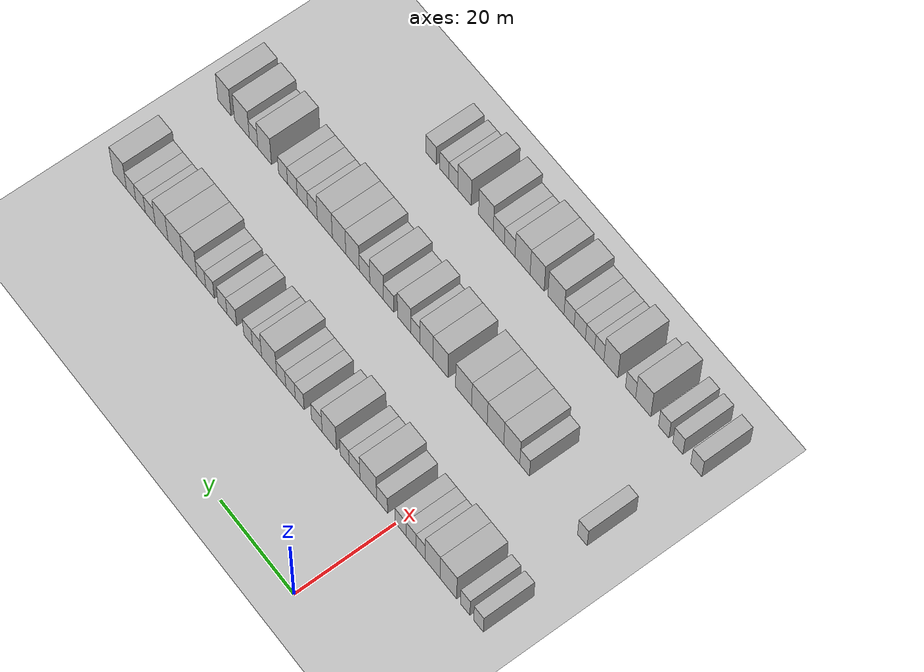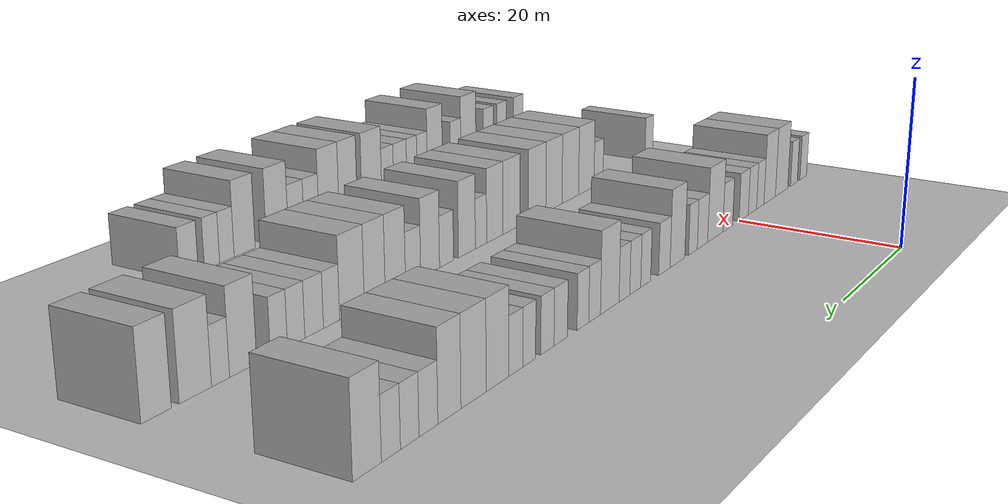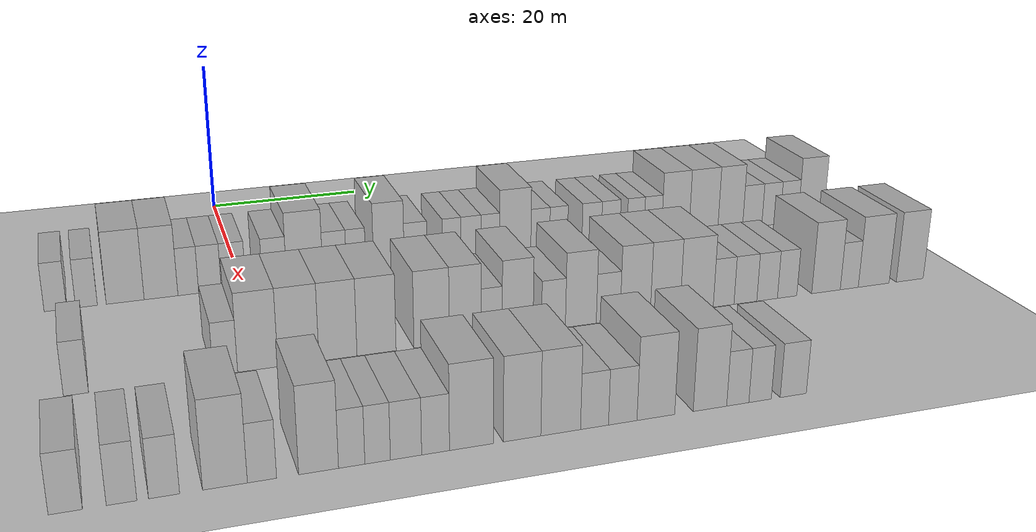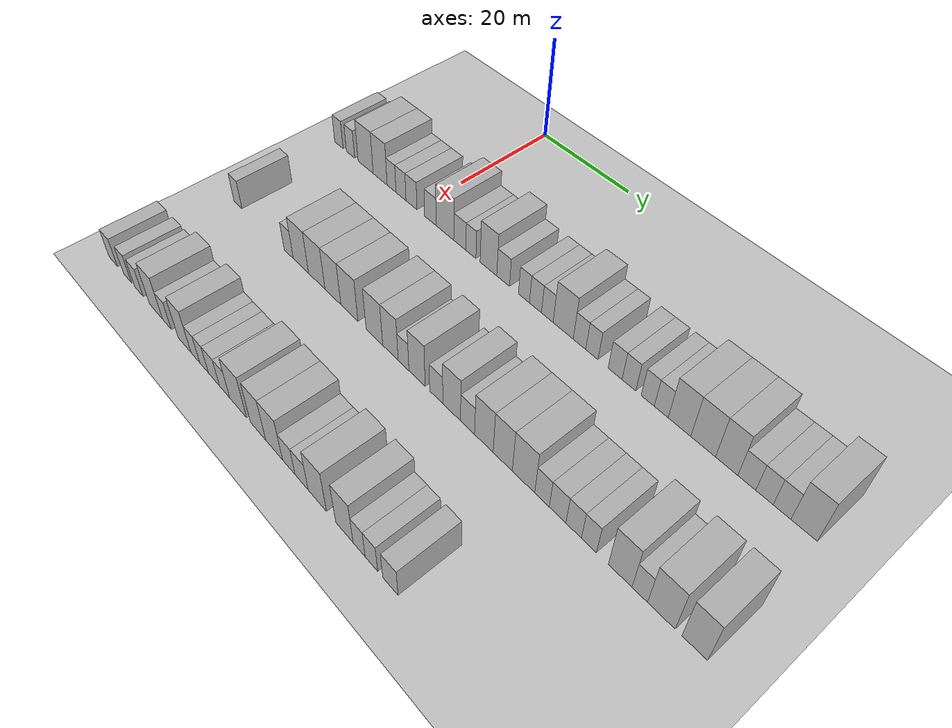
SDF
<sdf version="1.6">
 <world name="default">
  <include><name>ground_plane_1</name><uri>model://HANNAS_ground_plane</uri></include>
  <model name="building_95">
   <static>1</static>
   <pose>25.0000 -21.7212 0 0.000000 0.000000 0.000000</pose>
   <link name="link">
    <pose>0 0 3.00 0 0 0</pose>
    <collision name="collision"><geometry><box><size>10.0000 2.5044 6.0000</size></box></geometry></collision>
    <visual name="visual">
     <cast_shadows>0</cast_shadows>
     <geometry><box><size>10.0000 2.5044 6.0000</size></box></geometry>
     <material>
      <script>
       <uri>model://HANNAS_wall/materials/scripts</uri>
       <uri>model://HANNAS_wall/materials/textures</uri>
       <name>vrc/HANNAS_wall</name>
      </script>
     </material>
    </visual>
   </link>
  </model>
  <model name="building_96">
   <static>1</static>
   <pose>25.0000 -18.2491 0 0.000000 0.000000 0.000000</pose>
   <link name="link">
    <pose>0 0 3.00 0 0 0</pose>
    <collision name="collision"><geometry><box><size>10.0000 2.4398 6.0000</size></box></geometry></collision>
    <visual name="visual">
     <cast_shadows>0</cast_shadows>
     <geometry><box><size>10.0000 2.4398 6.0000</size></box></geometry>
     <material>
      <script>
       <uri>model://HANNAS_wall/materials/scripts</uri>
       <uri>model://HANNAS_wall/materials/textures</uri>
       <name>vrc/HANNAS_wall</name>
      </script>
     </material>
    </visual>
   </link>
  </model>
  <model name="building_97">
   <static>1</static>
   <pose>25.0000 -13.8634 0 0.000000 0.000000 0.000000</pose>
   <link name="link">
    <pose>0 0 4.50 0 0 0</pose>
    <collision name="collision"><geometry><box><size>10.0000 4.3315 9.0000</size></box></geometry></collision>
    <visual name="visual">
     <cast_shadows>0</cast_shadows>
     <geometry><box><size>10.0000 4.3315 9.0000</size></box></geometry>
     <material>
      <script>
       <uri>model://HANNAS_wall/materials/scripts</uri>
       <uri>model://HANNAS_wall/materials/textures</uri>
       <name>vrc/HANNAS_wall</name>
      </script>
     </material>
    </visual>
   </link>
  </model>
  <model name="building_98">
   <static>1</static>
   <pose>25.0000 -9.7449 0 0.000000 0.000000 0.000000</pose>
   <link name="link">
    <pose>0 0 4.50 0 0 0</pose>
    <collision name="collision"><geometry><box><size>10.0000 3.9057 9.0000</size></box></geometry></collision>
    <visual name="visual">
     <cast_shadows>0</cast_shadows>
     <geometry><box><size>10.0000 3.9057 9.0000</size></box></geometry>
     <material>
      <script>
       <uri>model://HANNAS_wall/materials/scripts</uri>
       <uri>model://HANNAS_wall/materials/textures</uri>
       <name>vrc/HANNAS_wall</name>
      </script>
     </material>
    </visual>
   </link>
  </model>
  <model name="building_99">
   <static>1</static>
   <pose>25.0000 -6.5757 0 0.000000 0.000000 0.000000</pose>
   <link name="link">
    <pose>0 0 3.00 0 0 0</pose>
    <collision name="collision"><geometry><box><size>10.0000 2.4326 6.0000</size></box></geometry></collision>
    <visual name="visual">
     <cast_shadows>0</cast_shadows>
     <geometry><box><size>10.0000 2.4326 6.0000</size></box></geometry>
     <material>
      <script>
       <uri>model://HANNAS_wall/materials/scripts</uri>
       <uri>model://HANNAS_wall/materials/textures</uri>
       <name>vrc/HANNAS_wall</name>
      </script>
     </material>
    </visual>
   </link>
  </model>
  <model name="building_100">
   <static>1</static>
   <pose>25.0000 -4.0200 0 0.000000 0.000000 0.000000</pose>
   <link name="link">
    <pose>0 0 3.00 0 0 0</pose>
    <collision name="collision"><geometry><box><size>10.0000 2.6788 6.0000</size></box></geometry></collision>
    <visual name="visual">
     <cast_shadows>0</cast_shadows>
     <geometry><box><size>10.0000 2.6788 6.0000</size></box></geometry>
     <material>
      <script>
       <uri>model://HANNAS_wall/materials/scripts</uri>
       <uri>model://HANNAS_wall/materials/textures</uri>
       <name>vrc/HANNAS_wall</name>
      </script>
     </material>
    </visual>
   </link>
  </model>
  <model name="building_101">
   <static>1</static>
   <pose>25.0000 -1.2265 0 0.000000 0.000000 0.000000</pose>
   <link name="link">
    <pose>0 0 3.00 0 0 0</pose>
    <collision name="collision"><geometry><box><size>10.0000 2.9083 6.0000</size></box></geometry></collision>
    <visual name="visual">
     <cast_shadows>0</cast_shadows>
     <geometry><box><size>10.0000 2.9083 6.0000</size></box></geometry>
     <material>
      <script>
       <uri>model://HANNAS_wall/materials/scripts</uri>
       <uri>model://HANNAS_wall/materials/textures</uri>
       <name>vrc/HANNAS_wall</name>
      </script>
     </material>
    </visual>
   </link>
  </model>
  <model name="building_102">
   <static>1</static>
   <pose>25.0000 3.6994 0 0.000000 0.000000 0.000000</pose>
   <link name="link">
    <pose>0 0 3.00 0 0 0</pose>
    <collision name="collision"><geometry><box><size>10.0000 2.9434 6.0000</size></box></geometry></collision>
    <visual name="visual">
     <cast_shadows>0</cast_shadows>
     <geometry><box><size>10.0000 2.9434 6.0000</size></box></geometry>
     <material>
      <script>
       <uri>model://HANNAS_wall/materials/scripts</uri>
       <uri>model://HANNAS_wall/materials/textures</uri>
       <name>vrc/HANNAS_wall</name>
      </script>
     </material>
    </visual>
   </link>
  </model>
  <model name="building_103">
   <static>1</static>
   <pose>25.0000 7.3954 0 0.000000 0.000000 0.000000</pose>
   <link name="link">
    <pose>0 0 4.50 0 0 0</pose>
    <collision name="collision"><geometry><box><size>10.0000 4.4487 9.0000</size></box></geometry></collision>
    <visual name="visual">
     <cast_shadows>0</cast_shadows>
     <geometry><box><size>10.0000 4.4487 9.0000</size></box></geometry>
     <material>
      <script>
       <uri>model://HANNAS_wall/materials/scripts</uri>
       <uri>model://HANNAS_wall/materials/textures</uri>
       <name>vrc/HANNAS_wall</name>
      </script>
     </material>
    </visual>
   </link>
  </model>
  <model name="building_104">
   <static>1</static>
   <pose>25.0000 11.0896 0 0.000000 0.000000 0.000000</pose>
   <link name="link">
    <pose>0 0 3.00 0 0 0</pose>
    <collision name="collision"><geometry><box><size>10.0000 2.9396 6.0000</size></box></geometry></collision>
    <visual name="visual">
     <cast_shadows>0</cast_shadows>
     <geometry><box><size>10.0000 2.9396 6.0000</size></box></geometry>
     <material>
      <script>
       <uri>model://HANNAS_wall/materials/scripts</uri>
       <uri>model://HANNAS_wall/materials/textures</uri>
       <name>vrc/HANNAS_wall</name>
      </script>
     </material>
    </visual>
   </link>
  </model>
  <model name="building_105">
   <static>1</static>
   <pose>25.0000 13.7707 0 0.000000 0.000000 0.000000</pose>
   <link name="link">
    <pose>0 0 3.00 0 0 0</pose>
    <collision name="collision"><geometry><box><size>10.0000 2.4226 6.0000</size></box></geometry></collision>
    <visual name="visual">
     <cast_shadows>0</cast_shadows>
     <geometry><box><size>10.0000 2.4226 6.0000</size></box></geometry>
     <material>
      <script>
       <uri>model://HANNAS_wall/materials/scripts</uri>
       <uri>model://HANNAS_wall/materials/textures</uri>
       <name>vrc/HANNAS_wall</name>
      </script>
     </material>
    </visual>
   </link>
  </model>
  <model name="building_106">
   <static>1</static>
   <pose>25.0000 17.9264 0 0.000000 0.000000 0.000000</pose>
   <link name="link">
    <pose>0 0 4.50 0 0 0</pose>
    <collision name="collision"><geometry><box><size>10.0000 3.8888 9.0000</size></box></geometry></collision>
    <visual name="visual">
     <cast_shadows>0</cast_shadows>
     <geometry><box><size>10.0000 3.8888 9.0000</size></box></geometry>
     <material>
      <script>
       <uri>model://HANNAS_wall/materials/scripts</uri>
       <uri>model://HANNAS_wall/materials/textures</uri>
       <name>vrc/HANNAS_wall</name>
      </script>
     </material>
    </visual>
   </link>
  </model>
  <model name="building_107">
   <static>1</static>
   <pose>25.0000 21.3373 0 0.000000 0.000000 0.000000</pose>
   <link name="link">
    <pose>0 0 3.00 0 0 0</pose>
    <collision name="collision"><geometry><box><size>10.0000 2.9331 6.0000</size></box></geometry></collision>
    <visual name="visual">
     <cast_shadows>0</cast_shadows>
     <geometry><box><size>10.0000 2.9331 6.0000</size></box></geometry>
     <material>
      <script>
       <uri>model://HANNAS_wall/materials/scripts</uri>
       <uri>model://HANNAS_wall/materials/textures</uri>
       <name>vrc/HANNAS_wall</name>
      </script>
     </material>
    </visual>
   </link>
  </model>
  <model name="building_108">
   <static>1</static>
   <pose>25.0000 26.0196 0 0.000000 0.000000 0.000000</pose>
   <link name="link">
    <pose>0 0 3.00 0 0 0</pose>
    <collision name="collision"><geometry><box><size>10.0000 2.4313 6.0000</size></box></geometry></collision>
    <visual name="visual">
     <cast_shadows>0</cast_shadows>
     <geometry><box><size>10.0000 2.4313 6.0000</size></box></geometry>
     <material>
      <script>
       <uri>model://HANNAS_wall/materials/scripts</uri>
       <uri>model://HANNAS_wall/materials/textures</uri>
       <name>vrc/HANNAS_wall</name>
      </script>
     </material>
    </visual>
   </link>
  </model>
  <model name="building_109">
   <static>1</static>
   <pose>25.0000 28.5435 0 0.000000 0.000000 0.000000</pose>
   <link name="link">
    <pose>0 0 3.00 0 0 0</pose>
    <collision name="collision"><geometry><box><size>10.0000 2.6166 6.0000</size></box></geometry></collision>
    <visual name="visual">
     <cast_shadows>0</cast_shadows>
     <geometry><box><size>10.0000 2.6166 6.0000</size></box></geometry>
     <material>
      <script>
       <uri>model://HANNAS_wall/materials/scripts</uri>
       <uri>model://HANNAS_wall/materials/textures</uri>
       <name>vrc/HANNAS_wall</name>
      </script>
     </material>
    </visual>
   </link>
  </model>
  <model name="building_110">
   <static>1</static>
   <pose>25.0000 31.0920 0 0.000000 0.000000 0.000000</pose>
   <link name="link">
    <pose>0 0 3.00 0 0 0</pose>
    <collision name="collision"><geometry><box><size>10.0000 2.4805 6.0000</size></box></geometry></collision>
    <visual name="visual">
     <cast_shadows>0</cast_shadows>
     <geometry><box><size>10.0000 2.4805 6.0000</size></box></geometry>
     <material>
      <script>
       <uri>model://HANNAS_wall/materials/scripts</uri>
       <uri>model://HANNAS_wall/materials/textures</uri>
       <name>vrc/HANNAS_wall</name>
      </script>
     </material>
    </visual>
   </link>
  </model>
  <model name="building_111">
   <static>1</static>
   <pose>25.0000 34.4292 0 0.000000 0.000000 0.000000</pose>
   <link name="link">
    <pose>0 0 4.50 0 0 0</pose>
    <collision name="collision"><geometry><box><size>10.0000 4.1938 9.0000</size></box></geometry></collision>
    <visual name="visual">
     <cast_shadows>0</cast_shadows>
     <geometry><box><size>10.0000 4.1938 9.0000</size></box></geometry>
     <material>
      <script>
       <uri>model://HANNAS_wall/materials/scripts</uri>
       <uri>model://HANNAS_wall/materials/textures</uri>
       <name>vrc/HANNAS_wall</name>
      </script>
     </material>
    </visual>
   </link>
  </model>
  <model name="building_112">
   <static>1</static>
   <pose>25.0000 37.8019 0 0.000000 0.000000 0.000000</pose>
   <link name="link">
    <pose>0 0 3.00 0 0 0</pose>
    <collision name="collision"><geometry><box><size>10.0000 2.5516 6.0000</size></box></geometry></collision>
    <visual name="visual">
     <cast_shadows>0</cast_shadows>
     <geometry><box><size>10.0000 2.5516 6.0000</size></box></geometry>
     <material>
      <script>
       <uri>model://HANNAS_wall/materials/scripts</uri>
       <uri>model://HANNAS_wall/materials/textures</uri>
       <name>vrc/HANNAS_wall</name>
      </script>
     </material>
    </visual>
   </link>
  </model>
  <model name="building_113">
   <static>1</static>
   <pose>25.0000 40.2975 0 0.000000 0.000000 0.000000</pose>
   <link name="link">
    <pose>0 0 3.00 0 0 0</pose>
    <collision name="collision"><geometry><box><size>10.0000 2.4397 6.0000</size></box></geometry></collision>
    <visual name="visual">
     <cast_shadows>0</cast_shadows>
     <geometry><box><size>10.0000 2.4397 6.0000</size></box></geometry>
     <material>
      <script>
       <uri>model://HANNAS_wall/materials/scripts</uri>
       <uri>model://HANNAS_wall/materials/textures</uri>
       <name>vrc/HANNAS_wall</name>
      </script>
     </material>
    </visual>
   </link>
  </model>
  <model name="building_114">
   <static>1</static>
   <pose>25.0000 44.8608 0 0.000000 0.000000 0.000000</pose>
   <link name="link">
    <pose>0 0 3.00 0 0 0</pose>
    <collision name="collision"><geometry><box><size>10.0000 2.6869 6.0000</size></box></geometry></collision>
    <visual name="visual">
     <cast_shadows>0</cast_shadows>
     <geometry><box><size>10.0000 2.6869 6.0000</size></box></geometry>
     <material>
      <script>
       <uri>model://HANNAS_wall/materials/scripts</uri>
       <uri>model://HANNAS_wall/materials/textures</uri>
       <name>vrc/HANNAS_wall</name>
      </script>
     </material>
    </visual>
   </link>
  </model>
  <model name="building_115">
   <static>1</static>
   <pose>25.0000 47.4976 0 0.000000 0.000000 0.000000</pose>
   <link name="link">
    <pose>0 0 3.00 0 0 0</pose>
    <collision name="collision"><geometry><box><size>10.0000 2.5867 6.0000</size></box></geometry></collision>
    <visual name="visual">
     <cast_shadows>0</cast_shadows>
     <geometry><box><size>10.0000 2.5867 6.0000</size></box></geometry>
     <material>
      <script>
       <uri>model://HANNAS_wall/materials/scripts</uri>
       <uri>model://HANNAS_wall/materials/textures</uri>
       <name>vrc/HANNAS_wall</name>
      </script>
     </material>
    </visual>
   </link>
  </model>
  <model name="building_116">
   <static>1</static>
   <pose>25.0000 51.0020 0 0.000000 0.000000 0.000000</pose>
   <link name="link">
    <pose>0 0 3.00 0 0 0</pose>
    <collision name="collision"><geometry><box><size>10.0000 2.4221 6.0000</size></box></geometry></collision>
    <visual name="visual">
     <cast_shadows>0</cast_shadows>
     <geometry><box><size>10.0000 2.4221 6.0000</size></box></geometry>
     <material>
      <script>
       <uri>model://HANNAS_wall/materials/scripts</uri>
       <uri>model://HANNAS_wall/materials/textures</uri>
       <name>vrc/HANNAS_wall</name>
      </script>
     </material>
    </visual>
   </link>
  </model>
  <model name="building_117">
   <static>1</static>
   <pose>25.0000 53.4731 0 0.000000 0.000000 0.000000</pose>
   <link name="link">
    <pose>0 0 3.00 0 0 0</pose>
    <collision name="collision"><geometry><box><size>10.0000 2.5202 6.0000</size></box></geometry></collision>
    <visual name="visual">
     <cast_shadows>0</cast_shadows>
     <geometry><box><size>10.0000 2.5202 6.0000</size></box></geometry>
     <material>
      <script>
       <uri>model://HANNAS_wall/materials/scripts</uri>
       <uri>model://HANNAS_wall/materials/textures</uri>
       <name>vrc/HANNAS_wall</name>
      </script>
     </material>
    </visual>
   </link>
  </model>
  <model name="building_118">
   <static>1</static>
   <pose>25.0000 56.7251 0 0.000000 0.000000 0.000000</pose>
   <link name="link">
    <pose>0 0 4.50 0 0 0</pose>
    <collision name="collision"><geometry><box><size>10.0000 3.9838 9.0000</size></box></geometry></collision>
    <visual name="visual">
     <cast_shadows>0</cast_shadows>
     <geometry><box><size>10.0000 3.9838 9.0000</size></box></geometry>
     <material>
      <script>
       <uri>model://HANNAS_wall/materials/scripts</uri>
       <uri>model://HANNAS_wall/materials/textures</uri>
       <name>vrc/HANNAS_wall</name>
      </script>
     </material>
    </visual>
   </link>
  </model>
  <model name="building_119">
   <static>1</static>
   <pose>25.0000 60.8291 0 0.000000 0.000000 0.000000</pose>
   <link name="link">
    <pose>0 0 4.50 0 0 0</pose>
    <collision name="collision"><geometry><box><size>10.0000 4.2242 9.0000</size></box></geometry></collision>
    <visual name="visual">
     <cast_shadows>0</cast_shadows>
     <geometry><box><size>10.0000 4.2242 9.0000</size></box></geometry>
     <material>
      <script>
       <uri>model://HANNAS_wall/materials/scripts</uri>
       <uri>model://HANNAS_wall/materials/textures</uri>
       <name>vrc/HANNAS_wall</name>
      </script>
     </material>
    </visual>
   </link>
  </model>
  <model name="building_120">
   <static>1</static>
   <pose>25.0000 64.7787 0 0.000000 0.000000 0.000000</pose>
   <link name="link">
    <pose>0 0 4.50 0 0 0</pose>
    <collision name="collision"><geometry><box><size>10.0000 3.6748 9.0000</size></box></geometry></collision>
    <visual name="visual">
     <cast_shadows>0</cast_shadows>
     <geometry><box><size>10.0000 3.6748 9.0000</size></box></geometry>
     <material>
      <script>
       <uri>model://HANNAS_wall/materials/scripts</uri>
       <uri>model://HANNAS_wall/materials/textures</uri>
       <name>vrc/HANNAS_wall</name>
      </script>
     </material>
    </visual>
   </link>
  </model>
  <model name="building_121">
   <static>1</static>
   <pose>25.0000 68.0597 0 0.000000 0.000000 0.000000</pose>
   <link name="link">
    <pose>0 0 3.00 0 0 0</pose>
    <collision name="collision"><geometry><box><size>10.0000 2.8872 6.0000</size></box></geometry></collision>
    <visual name="visual">
     <cast_shadows>0</cast_shadows>
     <geometry><box><size>10.0000 2.8872 6.0000</size></box></geometry>
     <material>
      <script>
       <uri>model://HANNAS_wall/materials/scripts</uri>
       <uri>model://HANNAS_wall/materials/textures</uri>
       <name>vrc/HANNAS_wall</name>
      </script>
     </material>
    </visual>
   </link>
  </model>
  <model name="building_122">
   <static>1</static>
   <pose>25.0000 70.8754 0 0.000000 0.000000 0.000000</pose>
   <link name="link">
    <pose>0 0 3.00 0 0 0</pose>
    <collision name="collision"><geometry><box><size>10.0000 2.7441 6.0000</size></box></geometry></collision>
    <visual name="visual">
     <cast_shadows>0</cast_shadows>
     <geometry><box><size>10.0000 2.7441 6.0000</size></box></geometry>
     <material>
      <script>
       <uri>model://HANNAS_wall/materials/scripts</uri>
       <uri>model://HANNAS_wall/materials/textures</uri>
       <name>vrc/HANNAS_wall</name>
      </script>
     </material>
    </visual>
   </link>
  </model>
  <model name="building_123">
   <static>1</static>
   <pose>25.0000 73.6051 0 0.000000 0.000000 0.000000</pose>
   <link name="link">
    <pose>0 0 3.00 0 0 0</pose>
    <collision name="collision"><geometry><box><size>10.0000 2.7154 6.0000</size></box></geometry></collision>
    <visual name="visual">
     <cast_shadows>0</cast_shadows>
     <geometry><box><size>10.0000 2.7154 6.0000</size></box></geometry>
     <material>
      <script>
       <uri>model://HANNAS_wall/materials/scripts</uri>
       <uri>model://HANNAS_wall/materials/textures</uri>
       <name>vrc/HANNAS_wall</name>
      </script>
     </material>
    </visual>
   </link>
  </model>
  <model name="building_124">
   <static>1</static>
   <pose>25.0000 76.9421 0 0.000000 0.000000 0.000000</pose>
   <link name="link">
    <pose>0 0 4.50 0 0 0</pose>
    <collision name="collision"><geometry><box><size>10.0000 3.9586 9.0000</size></box></geometry></collision>
    <visual name="visual">
     <cast_shadows>0</cast_shadows>
     <geometry><box><size>10.0000 3.9586 9.0000</size></box></geometry>
     <material>
      <script>
       <uri>model://HANNAS_wall/materials/scripts</uri>
       <uri>model://HANNAS_wall/materials/textures</uri>
       <name>vrc/HANNAS_wall</name>
      </script>
     </material>
    </visual>
   </link>
  </model>
  <model name="building_289">
   <static>1</static>
   <pose>47.0000 -20.0310 0 0.000000 0.000000 0.000000</pose>
   <link name="link">
    <pose>0 0 3.00 0 0 0</pose>
    <collision name="collision"><geometry><box><size>10.0000 2.4629 6.0000</size></box></geometry></collision>
    <visual name="visual">
     <cast_shadows>0</cast_shadows>
     <geometry><box><size>10.0000 2.4629 6.0000</size></box></geometry>
     <material>
      <script>
       <uri>model://HANNAS_wall/materials/scripts</uri>
       <uri>model://HANNAS_wall/materials/textures</uri>
       <name>vrc/HANNAS_wall</name>
      </script>
     </material>
    </visual>
   </link>
  </model>
  <model name="building_290">
   <static>1</static>
   <pose>47.0000 -4.9883 0 0.000000 0.000000 0.000000</pose>
   <link name="link">
    <pose>0 0 3.00 0 0 0</pose>
    <collision name="collision"><geometry><box><size>10.0000 2.5408 6.0000</size></box></geometry></collision>
    <visual name="visual">
     <cast_shadows>0</cast_shadows>
     <geometry><box><size>10.0000 2.5408 6.0000</size></box></geometry>
     <material>
      <script>
       <uri>model://HANNAS_wall/materials/scripts</uri>
       <uri>model://HANNAS_wall/materials/textures</uri>
       <name>vrc/HANNAS_wall</name>
      </script>
     </material>
    </visual>
   </link>
  </model>
  <model name="building_291">
   <static>1</static>
   <pose>47.0000 -1.5984 0 0.000000 0.000000 0.000000</pose>
   <link name="link">
    <pose>0 0 4.50 0 0 0</pose>
    <collision name="collision"><geometry><box><size>10.0000 4.2390 9.0000</size></box></geometry></collision>
    <visual name="visual">
     <cast_shadows>0</cast_shadows>
     <geometry><box><size>10.0000 4.2390 9.0000</size></box></geometry>
     <material>
      <script>
       <uri>model://HANNAS_wall/materials/scripts</uri>
       <uri>model://HANNAS_wall/materials/textures</uri>
       <name>vrc/HANNAS_wall</name>
      </script>
     </material>
    </visual>
   </link>
  </model>
  <model name="building_292">
   <static>1</static>
   <pose>47.0000 2.7138 0 0.000000 0.000000 0.000000</pose>
   <link name="link">
    <pose>0 0 4.50 0 0 0</pose>
    <collision name="collision"><geometry><box><size>10.0000 4.3853 9.0000</size></box></geometry></collision>
    <visual name="visual">
     <cast_shadows>0</cast_shadows>
     <geometry><box><size>10.0000 4.3853 9.0000</size></box></geometry>
     <material>
      <script>
       <uri>model://HANNAS_wall/materials/scripts</uri>
       <uri>model://HANNAS_wall/materials/textures</uri>
       <name>vrc/HANNAS_wall</name>
      </script>
     </material>
    </visual>
   </link>
  </model>
  <model name="building_293">
   <static>1</static>
   <pose>47.0000 6.9749 0 0.000000 0.000000 0.000000</pose>
   <link name="link">
    <pose>0 0 4.50 0 0 0</pose>
    <collision name="collision"><geometry><box><size>10.0000 4.1368 9.0000</size></box></geometry></collision>
    <visual name="visual">
     <cast_shadows>0</cast_shadows>
     <geometry><box><size>10.0000 4.1368 9.0000</size></box></geometry>
     <material>
      <script>
       <uri>model://HANNAS_wall/materials/scripts</uri>
       <uri>model://HANNAS_wall/materials/textures</uri>
       <name>vrc/HANNAS_wall</name>
      </script>
     </material>
    </visual>
   </link>
  </model>
  <model name="building_294">
   <static>1</static>
   <pose>47.0000 11.2020 0 0.000000 0.000000 0.000000</pose>
   <link name="link">
    <pose>0 0 4.50 0 0 0</pose>
    <collision name="collision"><geometry><box><size>10.0000 4.3174 9.0000</size></box></geometry></collision>
    <visual name="visual">
     <cast_shadows>0</cast_shadows>
     <geometry><box><size>10.0000 4.3174 9.0000</size></box></geometry>
     <material>
      <script>
       <uri>model://HANNAS_wall/materials/scripts</uri>
       <uri>model://HANNAS_wall/materials/textures</uri>
       <name>vrc/HANNAS_wall</name>
      </script>
     </material>
    </visual>
   </link>
  </model>
  <model name="building_295">
   <static>1</static>
   <pose>47.0000 17.3605 0 0.000000 0.000000 0.000000</pose>
   <link name="link">
    <pose>0 0 4.50 0 0 0</pose>
    <collision name="collision"><geometry><box><size>10.0000 3.9996 9.0000</size></box></geometry></collision>
    <visual name="visual">
     <cast_shadows>0</cast_shadows>
     <geometry><box><size>10.0000 3.9996 9.0000</size></box></geometry>
     <material>
      <script>
       <uri>model://HANNAS_wall/materials/scripts</uri>
       <uri>model://HANNAS_wall/materials/textures</uri>
       <name>vrc/HANNAS_wall</name>
      </script>
     </material>
    </visual>
   </link>
  </model>
  <model name="building_296">
   <static>1</static>
   <pose>47.0000 21.1738 0 0.000000 0.000000 0.000000</pose>
   <link name="link">
    <pose>0 0 4.50 0 0 0</pose>
    <collision name="collision"><geometry><box><size>10.0000 3.6269 9.0000</size></box></geometry></collision>
    <visual name="visual">
     <cast_shadows>0</cast_shadows>
     <geometry><box><size>10.0000 3.6269 9.0000</size></box></geometry>
     <material>
      <script>
       <uri>model://HANNAS_wall/materials/scripts</uri>
       <uri>model://HANNAS_wall/materials/textures</uri>
       <name>vrc/HANNAS_wall</name>
      </script>
     </material>
    </visual>
   </link>
  </model>
  <model name="building_297">
   <static>1</static>
   <pose>47.0000 24.2230 0 0.000000 0.000000 0.000000</pose>
   <link name="link">
    <pose>0 0 3.00 0 0 0</pose>
    <collision name="collision"><geometry><box><size>10.0000 2.4716 6.0000</size></box></geometry></collision>
    <visual name="visual">
     <cast_shadows>0</cast_shadows>
     <geometry><box><size>10.0000 2.4716 6.0000</size></box></geometry>
     <material>
      <script>
       <uri>model://HANNAS_wall/materials/scripts</uri>
       <uri>model://HANNAS_wall/materials/textures</uri>
       <name>vrc/HANNAS_wall</name>
      </script>
     </material>
    </visual>
   </link>
  </model>
  <model name="building_298">
   <static>1</static>
   <pose>47.0000 27.2712 0 0.000000 0.000000 0.000000</pose>
   <link name="link">
    <pose>0 0 4.50 0 0 0</pose>
    <collision name="collision"><geometry><box><size>10.0000 3.6248 9.0000</size></box></geometry></collision>
    <visual name="visual">
     <cast_shadows>0</cast_shadows>
     <geometry><box><size>10.0000 3.6248 9.0000</size></box></geometry>
     <material>
      <script>
       <uri>model://HANNAS_wall/materials/scripts</uri>
       <uri>model://HANNAS_wall/materials/textures</uri>
       <name>vrc/HANNAS_wall</name>
      </script>
     </material>
    </visual>
   </link>
  </model>
  <model name="building_299">
   <static>1</static>
   <pose>47.0000 31.5098 0 0.000000 0.000000 0.000000</pose>
   <link name="link">
    <pose>0 0 3.00 0 0 0</pose>
    <collision name="collision"><geometry><box><size>10.0000 2.8523 6.0000</size></box></geometry></collision>
    <visual name="visual">
     <cast_shadows>0</cast_shadows>
     <geometry><box><size>10.0000 2.8523 6.0000</size></box></geometry>
     <material>
      <script>
       <uri>model://HANNAS_wall/materials/scripts</uri>
       <uri>model://HANNAS_wall/materials/textures</uri>
       <name>vrc/HANNAS_wall</name>
      </script>
     </material>
    </visual>
   </link>
  </model>
  <model name="building_300">
   <static>1</static>
   <pose>47.0000 34.8039 0 0.000000 0.000000 0.000000</pose>
   <link name="link">
    <pose>0 0 4.50 0 0 0</pose>
    <collision name="collision"><geometry><box><size>10.0000 3.7359 9.0000</size></box></geometry></collision>
    <visual name="visual">
     <cast_shadows>0</cast_shadows>
     <geometry><box><size>10.0000 3.7359 9.0000</size></box></geometry>
     <material>
      <script>
       <uri>model://HANNAS_wall/materials/scripts</uri>
       <uri>model://HANNAS_wall/materials/textures</uri>
       <name>vrc/HANNAS_wall</name>
      </script>
     </material>
    </visual>
   </link>
  </model>
  <model name="building_301">
   <static>1</static>
   <pose>47.0000 38.1253 0 0.000000 0.000000 0.000000</pose>
   <link name="link">
    <pose>0 0 3.00 0 0 0</pose>
    <collision name="collision"><geometry><box><size>10.0000 2.9069 6.0000</size></box></geometry></collision>
    <visual name="visual">
     <cast_shadows>0</cast_shadows>
     <geometry><box><size>10.0000 2.9069 6.0000</size></box></geometry>
     <material>
      <script>
       <uri>model://HANNAS_wall/materials/scripts</uri>
       <uri>model://HANNAS_wall/materials/textures</uri>
       <name>vrc/HANNAS_wall</name>
      </script>
     </material>
    </visual>
   </link>
  </model>
  <model name="building_302">
   <static>1</static>
   <pose>47.0000 41.4503 0 0.000000 0.000000 0.000000</pose>
   <link name="link">
    <pose>0 0 4.50 0 0 0</pose>
    <collision name="collision"><geometry><box><size>10.0000 3.7432 9.0000</size></box></geometry></collision>
    <visual name="visual">
     <cast_shadows>0</cast_shadows>
     <geometry><box><size>10.0000 3.7432 9.0000</size></box></geometry>
     <material>
      <script>
       <uri>model://HANNAS_wall/materials/scripts</uri>
       <uri>model://HANNAS_wall/materials/textures</uri>
       <name>vrc/HANNAS_wall</name>
      </script>
     </material>
    </visual>
   </link>
  </model>
  <model name="building_303">
   <static>1</static>
   <pose>47.0000 45.1914 0 0.000000 0.000000 0.000000</pose>
   <link name="link">
    <pose>0 0 4.50 0 0 0</pose>
    <collision name="collision"><geometry><box><size>10.0000 3.7389 9.0000</size></box></geometry></collision>
    <visual name="visual">
     <cast_shadows>0</cast_shadows>
     <geometry><box><size>10.0000 3.7389 9.0000</size></box></geometry>
     <material>
      <script>
       <uri>model://HANNAS_wall/materials/scripts</uri>
       <uri>model://HANNAS_wall/materials/textures</uri>
       <name>vrc/HANNAS_wall</name>
      </script>
     </material>
    </visual>
   </link>
  </model>
  <model name="building_304">
   <static>1</static>
   <pose>47.0000 49.1782 0 0.000000 0.000000 0.000000</pose>
   <link name="link">
    <pose>0 0 4.50 0 0 0</pose>
    <collision name="collision"><geometry><box><size>10.0000 4.2348 9.0000</size></box></geometry></collision>
    <visual name="visual">
     <cast_shadows>0</cast_shadows>
     <geometry><box><size>10.0000 4.2348 9.0000</size></box></geometry>
     <material>
      <script>
       <uri>model://HANNAS_wall/materials/scripts</uri>
       <uri>model://HANNAS_wall/materials/textures</uri>
       <name>vrc/HANNAS_wall</name>
      </script>
     </material>
    </visual>
   </link>
  </model>
  <model name="building_305">
   <static>1</static>
   <pose>47.0000 52.6329 0 0.000000 0.000000 0.000000</pose>
   <link name="link">
    <pose>0 0 3.00 0 0 0</pose>
    <collision name="collision"><geometry><box><size>10.0000 2.6744 6.0000</size></box></geometry></collision>
    <visual name="visual">
     <cast_shadows>0</cast_shadows>
     <geometry><box><size>10.0000 2.6744 6.0000</size></box></geometry>
     <material>
      <script>
       <uri>model://HANNAS_wall/materials/scripts</uri>
       <uri>model://HANNAS_wall/materials/textures</uri>
       <name>vrc/HANNAS_wall</name>
      </script>
     </material>
    </visual>
   </link>
  </model>
  <model name="building_306">
   <static>1</static>
   <pose>47.0000 55.4599 0 0.000000 0.000000 0.000000</pose>
   <link name="link">
    <pose>0 0 3.00 0 0 0</pose>
    <collision name="collision"><geometry><box><size>10.0000 2.9797 6.0000</size></box></geometry></collision>
    <visual name="visual">
     <cast_shadows>0</cast_shadows>
     <geometry><box><size>10.0000 2.9797 6.0000</size></box></geometry>
     <material>
      <script>
       <uri>model://HANNAS_wall/materials/scripts</uri>
       <uri>model://HANNAS_wall/materials/textures</uri>
       <name>vrc/HANNAS_wall</name>
      </script>
     </material>
    </visual>
   </link>
  </model>
  <model name="building_307">
   <static>1</static>
   <pose>47.0000 58.3049 0 0.000000 0.000000 0.000000</pose>
   <link name="link">
    <pose>0 0 3.00 0 0 0</pose>
    <collision name="collision"><geometry><box><size>10.0000 2.7103 6.0000</size></box></geometry></collision>
    <visual name="visual">
     <cast_shadows>0</cast_shadows>
     <geometry><box><size>10.0000 2.7103 6.0000</size></box></geometry>
     <material>
      <script>
       <uri>model://HANNAS_wall/materials/scripts</uri>
       <uri>model://HANNAS_wall/materials/textures</uri>
       <name>vrc/HANNAS_wall</name>
      </script>
     </material>
    </visual>
   </link>
  </model>
  <model name="building_308">
   <static>1</static>
   <pose>47.0000 60.9471 0 0.000000 0.000000 0.000000</pose>
   <link name="link">
    <pose>0 0 3.00 0 0 0</pose>
    <collision name="collision"><geometry><box><size>10.0000 2.5742 6.0000</size></box></geometry></collision>
    <visual name="visual">
     <cast_shadows>0</cast_shadows>
     <geometry><box><size>10.0000 2.5742 6.0000</size></box></geometry>
     <material>
      <script>
       <uri>model://HANNAS_wall/materials/scripts</uri>
       <uri>model://HANNAS_wall/materials/textures</uri>
       <name>vrc/HANNAS_wall</name>
      </script>
     </material>
    </visual>
   </link>
  </model>
  <model name="building_309">
   <static>1</static>
   <pose>47.0000 66.1662 0 0.000000 0.000000 0.000000</pose>
   <link name="link">
    <pose>0 0 4.50 0 0 0</pose>
    <collision name="collision"><geometry><box><size>10.0000 3.8640 9.0000</size></box></geometry></collision>
    <visual name="visual">
     <cast_shadows>0</cast_shadows>
     <geometry><box><size>10.0000 3.8640 9.0000</size></box></geometry>
     <material>
      <script>
       <uri>model://HANNAS_wall/materials/scripts</uri>
       <uri>model://HANNAS_wall/materials/textures</uri>
       <name>vrc/HANNAS_wall</name>
      </script>
     </material>
    </visual>
   </link>
  </model>
  <model name="building_310">
   <static>1</static>
   <pose>47.0000 69.3322 0 0.000000 0.000000 0.000000</pose>
   <link name="link">
    <pose>0 0 3.00 0 0 0</pose>
    <collision name="collision"><geometry><box><size>10.0000 2.4679 6.0000</size></box></geometry></collision>
    <visual name="visual">
     <cast_shadows>0</cast_shadows>
     <geometry><box><size>10.0000 2.4679 6.0000</size></box></geometry>
     <material>
      <script>
       <uri>model://HANNAS_wall/materials/scripts</uri>
       <uri>model://HANNAS_wall/materials/textures</uri>
       <name>vrc/HANNAS_wall</name>
      </script>
     </material>
    </visual>
   </link>
  </model>
  <model name="building_311">
   <static>1</static>
   <pose>47.0000 72.7006 0 0.000000 0.000000 0.000000</pose>
   <link name="link">
    <pose>0 0 4.50 0 0 0</pose>
    <collision name="collision"><geometry><box><size>10.0000 4.2688 9.0000</size></box></geometry></collision>
    <visual name="visual">
     <cast_shadows>0</cast_shadows>
     <geometry><box><size>10.0000 4.2688 9.0000</size></box></geometry>
     <material>
      <script>
       <uri>model://HANNAS_wall/materials/scripts</uri>
       <uri>model://HANNAS_wall/materials/textures</uri>
       <name>vrc/HANNAS_wall</name>
      </script>
     </material>
    </visual>
   </link>
  </model>
  <model name="building_312">
   <static>1</static>
   <pose>47.0000 77.7313 0 0.000000 0.000000 0.000000</pose>
   <link name="link">
    <pose>0 0 4.50 0 0 0</pose>
    <collision name="collision"><geometry><box><size>10.0000 3.7927 9.0000</size></box></geometry></collision>
    <visual name="visual">
     <cast_shadows>0</cast_shadows>
     <geometry><box><size>10.0000 3.7927 9.0000</size></box></geometry>
     <material>
      <script>
       <uri>model://HANNAS_wall/materials/scripts</uri>
       <uri>model://HANNAS_wall/materials/textures</uri>
       <name>vrc/HANNAS_wall</name>
      </script>
     </material>
    </visual>
   </link>
  </model>
  <model name="building_470">
   <static>1</static>
   <pose>69.0000 -21.5121 0 0.000000 0.000000 0.000000</pose>
   <link name="link">
    <pose>0 0 3.00 0 0 0</pose>
    <collision name="collision"><geometry><box><size>10.0000 2.8530 6.0000</size></box></geometry></collision>
    <visual name="visual">
     <cast_shadows>0</cast_shadows>
     <geometry><box><size>10.0000 2.8530 6.0000</size></box></geometry>
     <material>
      <script>
       <uri>model://HANNAS_wall/materials/scripts</uri>
       <uri>model://HANNAS_wall/materials/textures</uri>
       <name>vrc/HANNAS_wall</name>
      </script>
     </material>
    </visual>
   </link>
  </model>
  <model name="building_471">
   <static>1</static>
   <pose>69.0000 -16.7837 0 0.000000 0.000000 0.000000</pose>
   <link name="link">
    <pose>0 0 3.00 0 0 0</pose>
    <collision name="collision"><geometry><box><size>10.0000 2.6037 6.0000</size></box></geometry></collision>
    <visual name="visual">
     <cast_shadows>0</cast_shadows>
     <geometry><box><size>10.0000 2.6037 6.0000</size></box></geometry>
     <material>
      <script>
       <uri>model://HANNAS_wall/materials/scripts</uri>
       <uri>model://HANNAS_wall/materials/textures</uri>
       <name>vrc/HANNAS_wall</name>
      </script>
     </material>
    </visual>
   </link>
  </model>
  <model name="building_472">
   <static>1</static>
   <pose>69.0000 -13.1388 0 0.000000 0.000000 0.000000</pose>
   <link name="link">
    <pose>0 0 3.00 0 0 0</pose>
    <collision name="collision"><geometry><box><size>10.0000 2.6862 6.0000</size></box></geometry></collision>
    <visual name="visual">
     <cast_shadows>0</cast_shadows>
     <geometry><box><size>10.0000 2.6862 6.0000</size></box></geometry>
     <material>
      <script>
       <uri>model://HANNAS_wall/materials/scripts</uri>
       <uri>model://HANNAS_wall/materials/textures</uri>
       <name>vrc/HANNAS_wall</name>
      </script>
     </material>
    </visual>
   </link>
  </model>
  <model name="building_473">
   <static>1</static>
   <pose>69.0000 -7.8086 0 0.000000 0.000000 0.000000</pose>
   <link name="link">
    <pose>0 0 4.50 0 0 0</pose>
    <collision name="collision"><geometry><box><size>10.0000 3.9742 9.0000</size></box></geometry></collision>
    <visual name="visual">
     <cast_shadows>0</cast_shadows>
     <geometry><box><size>10.0000 3.9742 9.0000</size></box></geometry>
     <material>
      <script>
       <uri>model://HANNAS_wall/materials/scripts</uri>
       <uri>model://HANNAS_wall/materials/textures</uri>
       <name>vrc/HANNAS_wall</name>
      </script>
     </material>
    </visual>
   </link>
  </model>
  <model name="building_474">
   <static>1</static>
   <pose>69.0000 -4.5075 0 0.000000 0.000000 0.000000</pose>
   <link name="link">
    <pose>0 0 3.00 0 0 0</pose>
    <collision name="collision"><geometry><box><size>10.0000 2.6280 6.0000</size></box></geometry></collision>
    <visual name="visual">
     <cast_shadows>0</cast_shadows>
     <geometry><box><size>10.0000 2.6280 6.0000</size></box></geometry>
     <material>
      <script>
       <uri>model://HANNAS_wall/materials/scripts</uri>
       <uri>model://HANNAS_wall/materials/textures</uri>
       <name>vrc/HANNAS_wall</name>
      </script>
     </material>
    </visual>
   </link>
  </model>
  <model name="building_475">
   <static>1</static>
   <pose>69.0000 0.6458 0 0.000000 0.000000 0.000000</pose>
   <link name="link">
    <pose>0 0 4.50 0 0 0</pose>
    <collision name="collision"><geometry><box><size>10.0000 3.6787 9.0000</size></box></geometry></collision>
    <visual name="visual">
     <cast_shadows>0</cast_shadows>
     <geometry><box><size>10.0000 3.6787 9.0000</size></box></geometry>
     <material>
      <script>
       <uri>model://HANNAS_wall/materials/scripts</uri>
       <uri>model://HANNAS_wall/materials/textures</uri>
       <name>vrc/HANNAS_wall</name>
      </script>
     </material>
    </visual>
   </link>
  </model>
  <model name="building_476">
   <static>1</static>
   <pose>69.0000 3.7163 0 0.000000 0.000000 0.000000</pose>
   <link name="link">
    <pose>0 0 3.00 0 0 0</pose>
    <collision name="collision"><geometry><box><size>10.0000 2.4623 6.0000</size></box></geometry></collision>
    <visual name="visual">
     <cast_shadows>0</cast_shadows>
     <geometry><box><size>10.0000 2.4623 6.0000</size></box></geometry>
     <material>
      <script>
       <uri>model://HANNAS_wall/materials/scripts</uri>
       <uri>model://HANNAS_wall/materials/textures</uri>
       <name>vrc/HANNAS_wall</name>
      </script>
     </material>
    </visual>
   </link>
  </model>
  <model name="building_477">
   <static>1</static>
   <pose>69.0000 6.1534 0 0.000000 0.000000 0.000000</pose>
   <link name="link">
    <pose>0 0 3.00 0 0 0</pose>
    <collision name="collision"><geometry><box><size>10.0000 2.4119 6.0000</size></box></geometry></collision>
    <visual name="visual">
     <cast_shadows>0</cast_shadows>
     <geometry><box><size>10.0000 2.4119 6.0000</size></box></geometry>
     <material>
      <script>
       <uri>model://HANNAS_wall/materials/scripts</uri>
       <uri>model://HANNAS_wall/materials/textures</uri>
       <name>vrc/HANNAS_wall</name>
      </script>
     </material>
    </visual>
   </link>
  </model>
  <model name="building_478">
   <static>1</static>
   <pose>69.0000 8.8518 0 0.000000 0.000000 0.000000</pose>
   <link name="link">
    <pose>0 0 3.00 0 0 0</pose>
    <collision name="collision"><geometry><box><size>10.0000 2.9850 6.0000</size></box></geometry></collision>
    <visual name="visual">
     <cast_shadows>0</cast_shadows>
     <geometry><box><size>10.0000 2.9850 6.0000</size></box></geometry>
     <material>
      <script>
       <uri>model://HANNAS_wall/materials/scripts</uri>
       <uri>model://HANNAS_wall/materials/textures</uri>
       <name>vrc/HANNAS_wall</name>
      </script>
     </material>
    </visual>
   </link>
  </model>
  <model name="building_479">
   <static>1</static>
   <pose>69.0000 11.6915 0 0.000000 0.000000 0.000000</pose>
   <link name="link">
    <pose>0 0 3.00 0 0 0</pose>
    <collision name="collision"><geometry><box><size>10.0000 2.6942 6.0000</size></box></geometry></collision>
    <visual name="visual">
     <cast_shadows>0</cast_shadows>
     <geometry><box><size>10.0000 2.6942 6.0000</size></box></geometry>
     <material>
      <script>
       <uri>model://HANNAS_wall/materials/scripts</uri>
       <uri>model://HANNAS_wall/materials/textures</uri>
       <name>vrc/HANNAS_wall</name>
      </script>
     </material>
    </visual>
   </link>
  </model>
  <model name="building_480">
   <static>1</static>
   <pose>69.0000 15.1951 0 0.000000 0.000000 0.000000</pose>
   <link name="link">
    <pose>0 0 4.50 0 0 0</pose>
    <collision name="collision"><geometry><box><size>10.0000 4.3131 9.0000</size></box></geometry></collision>
    <visual name="visual">
     <cast_shadows>0</cast_shadows>
     <geometry><box><size>10.0000 4.3131 9.0000</size></box></geometry>
     <material>
      <script>
       <uri>model://HANNAS_wall/materials/scripts</uri>
       <uri>model://HANNAS_wall/materials/textures</uri>
       <name>vrc/HANNAS_wall</name>
      </script>
     </material>
    </visual>
   </link>
  </model>
  <model name="building_481">
   <static>1</static>
   <pose>69.0000 20.2380 0 0.000000 0.000000 0.000000</pose>
   <link name="link">
    <pose>0 0 4.50 0 0 0</pose>
    <collision name="collision"><geometry><box><size>10.0000 3.7727 9.0000</size></box></geometry></collision>
    <visual name="visual">
     <cast_shadows>0</cast_shadows>
     <geometry><box><size>10.0000 3.7727 9.0000</size></box></geometry>
     <material>
      <script>
       <uri>model://HANNAS_wall/materials/scripts</uri>
       <uri>model://HANNAS_wall/materials/textures</uri>
       <name>vrc/HANNAS_wall</name>
      </script>
     </material>
    </visual>
   </link>
  </model>
  <model name="building_482">
   <static>1</static>
   <pose>69.0000 24.1536 0 0.000000 0.000000 0.000000</pose>
   <link name="link">
    <pose>0 0 4.50 0 0 0</pose>
    <collision name="collision"><geometry><box><size>10.0000 4.0584 9.0000</size></box></geometry></collision>
    <visual name="visual">
     <cast_shadows>0</cast_shadows>
     <geometry><box><size>10.0000 4.0584 9.0000</size></box></geometry>
     <material>
      <script>
       <uri>model://HANNAS_wall/materials/scripts</uri>
       <uri>model://HANNAS_wall/materials/textures</uri>
       <name>vrc/HANNAS_wall</name>
      </script>
     </material>
    </visual>
   </link>
  </model>
  <model name="building_483">
   <static>1</static>
   <pose>69.0000 27.6371 0 0.000000 0.000000 0.000000</pose>
   <link name="link">
    <pose>0 0 3.00 0 0 0</pose>
    <collision name="collision"><geometry><box><size>10.0000 2.9086 6.0000</size></box></geometry></collision>
    <visual name="visual">
     <cast_shadows>0</cast_shadows>
     <geometry><box><size>10.0000 2.9086 6.0000</size></box></geometry>
     <material>
      <script>
       <uri>model://HANNAS_wall/materials/scripts</uri>
       <uri>model://HANNAS_wall/materials/textures</uri>
       <name>vrc/HANNAS_wall</name>
      </script>
     </material>
    </visual>
   </link>
  </model>
  <model name="building_484">
   <static>1</static>
   <pose>69.0000 30.5890 0 0.000000 0.000000 0.000000</pose>
   <link name="link">
    <pose>0 0 3.00 0 0 0</pose>
    <collision name="collision"><geometry><box><size>10.0000 2.9953 6.0000</size></box></geometry></collision>
    <visual name="visual">
     <cast_shadows>0</cast_shadows>
     <geometry><box><size>10.0000 2.9953 6.0000</size></box></geometry>
     <material>
      <script>
       <uri>model://HANNAS_wall/materials/scripts</uri>
       <uri>model://HANNAS_wall/materials/textures</uri>
       <name>vrc/HANNAS_wall</name>
      </script>
     </material>
    </visual>
   </link>
  </model>
  <model name="building_485">
   <static>1</static>
   <pose>69.0000 34.1029 0 0.000000 0.000000 0.000000</pose>
   <link name="link">
    <pose>0 0 4.50 0 0 0</pose>
    <collision name="collision"><geometry><box><size>10.0000 4.0325 9.0000</size></box></geometry></collision>
    <visual name="visual">
     <cast_shadows>0</cast_shadows>
     <geometry><box><size>10.0000 4.0325 9.0000</size></box></geometry>
     <material>
      <script>
       <uri>model://HANNAS_wall/materials/scripts</uri>
       <uri>model://HANNAS_wall/materials/textures</uri>
       <name>vrc/HANNAS_wall</name>
      </script>
     </material>
    </visual>
   </link>
  </model>
  <model name="building_486">
   <static>1</static>
   <pose>69.0000 39.9535 0 0.000000 0.000000 0.000000</pose>
   <link name="link">
    <pose>0 0 4.50 0 0 0</pose>
    <collision name="collision"><geometry><box><size>10.0000 3.6687 9.0000</size></box></geometry></collision>
    <visual name="visual">
     <cast_shadows>0</cast_shadows>
     <geometry><box><size>10.0000 3.6687 9.0000</size></box></geometry>
     <material>
      <script>
       <uri>model://HANNAS_wall/materials/scripts</uri>
       <uri>model://HANNAS_wall/materials/textures</uri>
       <name>vrc/HANNAS_wall</name>
      </script>
     </material>
    </visual>
   </link>
  </model>
  <model name="building_487">
   <static>1</static>
   <pose>69.0000 43.0171 0 0.000000 0.000000 0.000000</pose>
   <link name="link">
    <pose>0 0 3.00 0 0 0</pose>
    <collision name="collision"><geometry><box><size>10.0000 2.4585 6.0000</size></box></geometry></collision>
    <visual name="visual">
     <cast_shadows>0</cast_shadows>
     <geometry><box><size>10.0000 2.4585 6.0000</size></box></geometry>
     <material>
      <script>
       <uri>model://HANNAS_wall/materials/scripts</uri>
       <uri>model://HANNAS_wall/materials/textures</uri>
       <name>vrc/HANNAS_wall</name>
      </script>
     </material>
    </visual>
   </link>
  </model>
  <model name="building_488">
   <static>1</static>
   <pose>69.0000 45.5058 0 0.000000 0.000000 0.000000</pose>
   <link name="link">
    <pose>0 0 3.00 0 0 0</pose>
    <collision name="collision"><geometry><box><size>10.0000 2.5190 6.0000</size></box></geometry></collision>
    <visual name="visual">
     <cast_shadows>0</cast_shadows>
     <geometry><box><size>10.0000 2.5190 6.0000</size></box></geometry>
     <material>
      <script>
       <uri>model://HANNAS_wall/materials/scripts</uri>
       <uri>model://HANNAS_wall/materials/textures</uri>
       <name>vrc/HANNAS_wall</name>
      </script>
     </material>
    </visual>
   </link>
  </model>
  <model name="building_489">
   <static>1</static>
   <pose>69.0000 49.2535 0 0.000000 0.000000 0.000000</pose>
   <link name="link">
    <pose>0 0 3.00 0 0 0</pose>
    <collision name="collision"><geometry><box><size>10.0000 2.9764 6.0000</size></box></geometry></collision>
    <visual name="visual">
     <cast_shadows>0</cast_shadows>
     <geometry><box><size>10.0000 2.9764 6.0000</size></box></geometry>
     <material>
      <script>
       <uri>model://HANNAS_wall/materials/scripts</uri>
       <uri>model://HANNAS_wall/materials/textures</uri>
       <name>vrc/HANNAS_wall</name>
      </script>
     </material>
    </visual>
   </link>
  </model>
 </world>
</sdf>
